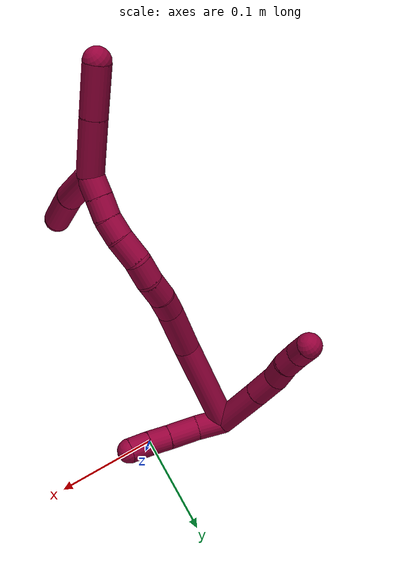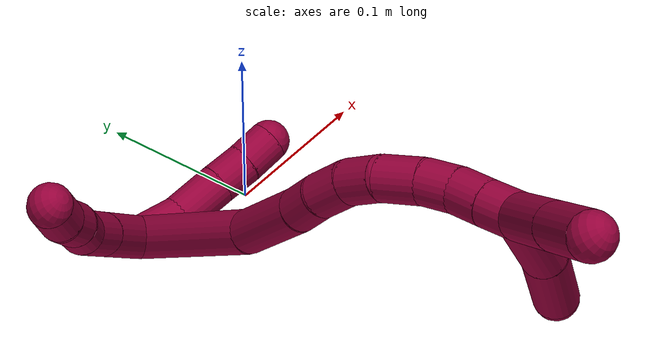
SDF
<sdf version="1.7">
 <world name="default">
  <model name="8">
   <static>0</static>
   <link name="8">
    <collision name="collision-cylinder-e_1_2_8">
     <pose>-0.022329 -0.010562 0.014191 0.639838 -0.900807 -0.317702</pose>
     <geometry><cylinder><radius>0.0125</radius><length>0.056974</length></cylinder></geometry>
     <surface>
      <friction><ode><mu>1.16</mu><mu2>1.16</mu2><slip1>0</slip1><slip2>0</slip2></ode></friction>
      <contact><ode><kp>1e+06</kp><kd>1</kd><max_vel>0</max_vel><min_depth>0.001</min_depth></ode></contact>
     </surface>
    </collision>
    <visual name="visual-cylinder-e_1_2_8">
     <pose>-0.022329 -0.010562 0.014191 0.639838 -0.900807 -0.317702</pose>
     <geometry><cylinder><radius>0.0125</radius><length>0.056974</length></cylinder></geometry>
     <material><ambient>0.584314 0 0.227451 1</ambient></material>
    </visual>
    <collision name="collision-cylinder-e_2_8_9">
     <pose>-0.055939 -0.026553 0.035819 0.630479 -0.886229 -0.307105</pose>
     <geometry><cylinder><radius>0.0125</radius><length>0.029124</length></cylinder></geometry>
     <surface>
      <friction><ode><mu>1.16</mu><mu2>1.16</mu2><slip1>0</slip1><slip2>0</slip2></ode></friction>
      <contact><ode><kp>1e+06</kp><kd>1</kd><max_vel>0</max_vel><min_depth>0.001</min_depth></ode></contact>
     </surface>
    </collision>
    <visual name="visual-cylinder-e_2_8_9">
     <pose>-0.055939 -0.026553 0.035819 0.630479 -0.886229 -0.307105</pose>
     <geometry><cylinder><radius>0.0125</radius><length>0.029124</length></cylinder></geometry>
     <material><ambient>0.584314 0 0.227451 1</ambient></material>
    </visual>
    <collision name="collision-cylinder-e_3_9_10">
     <pose>-0.074776 -0.034899 0.051381 0.344815 -0.719024 -0.13071</pose>
     <geometry><cylinder><radius>0.0125</radius><length>0.022943</length></cylinder></geometry>
     <surface>
      <friction><ode><mu>1.16</mu><mu2>1.16</mu2><slip1>0</slip1><slip2>0</slip2></ode></friction>
      <contact><ode><kp>1e+06</kp><kd>1</kd><max_vel>0</max_vel><min_depth>0.001</min_depth></ode></contact>
     </surface>
    </collision>
    <visual name="visual-cylinder-e_3_9_10">
     <pose>-0.074776 -0.034899 0.051381 0.344815 -0.719024 -0.13071</pose>
     <geometry><cylinder><radius>0.0125</radius><length>0.022943</length></cylinder></geometry>
     <material><ambient>0.584314 0 0.227451 1</ambient></material>
    </visual>
    <collision name="collision-cylinder-e_4_10_11">
     <pose>-0.090196 -0.040956 0.065482 0.483564 -0.861364 -0.225642</pose>
     <geometry><cylinder><radius>0.0125</radius><length>0.020731</length></cylinder></geometry>
     <surface>
      <friction><ode><mu>1.16</mu><mu2>1.16</mu2><slip1>0</slip1><slip2>0</slip2></ode></friction>
      <contact><ode><kp>1e+06</kp><kd>1</kd><max_vel>0</max_vel><min_depth>0.001</min_depth></ode></contact>
     </surface>
    </collision>
    <visual name="visual-cylinder-e_4_10_11">
     <pose>-0.090196 -0.040956 0.065482 0.483564 -0.861364 -0.225642</pose>
     <geometry><cylinder><radius>0.0125</radius><length>0.020731</length></cylinder></geometry>
     <material><ambient>0.584314 0 0.227451 1</ambient></material>
    </visual>
    <collision name="collision-cylinder-e_5_11_6">
     <pose>-0.105614 -0.044933 0.078134 0.124955 -0.843279 -0.056106</pose>
     <geometry><cylinder><radius>0.0125</radius><length>0.020227</length></cylinder></geometry>
     <surface>
      <friction><ode><mu>1.16</mu><mu2>1.16</mu2><slip1>0</slip1><slip2>0</slip2></ode></friction>
      <contact><ode><kp>1e+06</kp><kd>1</kd><max_vel>0</max_vel><min_depth>0.001</min_depth></ode></contact>
     </surface>
    </collision>
    <visual name="visual-cylinder-e_5_11_6">
     <pose>-0.105614 -0.044933 0.078134 0.124955 -0.843279 -0.056106</pose>
     <geometry><cylinder><radius>0.0125</radius><length>0.020227</length></cylinder></geometry>
     <material><ambient>0.584314 0 0.227451 1</ambient></material>
    </visual>
    <collision name="collision-cylinder-e_1_2_12">
     <pose>0.010636 0.007545 0.004197 -1.06314 0.888912 -0.546092</pose>
     <geometry><cylinder><radius>0.0125</radius><length>0.027399</length></cylinder></geometry>
     <surface>
      <friction><ode><mu>1.16</mu><mu2>1.16</mu2><slip1>0</slip1><slip2>0</slip2></ode></friction>
      <contact><ode><kp>1e+06</kp><kd>1</kd><max_vel>0</max_vel><min_depth>0.001</min_depth></ode></contact>
     </surface>
    </collision>
    <visual name="visual-cylinder-e_1_2_12">
     <pose>0.010636 0.007545 0.004197 -1.06314 0.888912 -0.546092</pose>
     <geometry><cylinder><radius>0.0125</radius><length>0.027399</length></cylinder></geometry>
     <material><ambient>0.584314 0 0.227451 1</ambient></material>
    </visual>
    <collision name="collision-cylinder-e_2_12_13">
     <pose>0.030636 0.025338 0.015298 -0.977993 0.64851 -0.353955</pose>
     <geometry><cylinder><radius>0.0125</radius><length>0.031007</length></cylinder></geometry>
     <surface>
      <friction><ode><mu>1.16</mu><mu2>1.16</mu2><slip1>0</slip1><slip2>0</slip2></ode></friction>
      <contact><ode><kp>1e+06</kp><kd>1</kd><max_vel>0</max_vel><min_depth>0.001</min_depth></ode></contact>
     </surface>
    </collision>
    <visual name="visual-cylinder-e_2_12_13">
     <pose>0.030636 0.025338 0.015298 -0.977993 0.64851 -0.353955</pose>
     <geometry><cylinder><radius>0.0125</radius><length>0.031007</length></cylinder></geometry>
     <material><ambient>0.584314 0 0.227451 1</ambient></material>
    </visual>
    <collision name="collision-cylinder-e_3_13_14">
     <pose>0.046444 0.042218 0.026888 -0.955561 0.670794 -0.357126</pose>
     <geometry><cylinder><radius>0.0125</radius><length>0.020734</length></cylinder></geometry>
     <surface>
      <friction><ode><mu>1.16</mu><mu2>1.16</mu2><slip1>0</slip1><slip2>0</slip2></ode></friction>
      <contact><ode><kp>1e+06</kp><kd>1</kd><max_vel>0</max_vel><min_depth>0.001</min_depth></ode></contact>
     </surface>
    </collision>
    <visual name="visual-cylinder-e_3_13_14">
     <pose>0.046444 0.042218 0.026888 -0.955561 0.670794 -0.357126</pose>
     <geometry><cylinder><radius>0.0125</radius><length>0.020734</length></cylinder></geometry>
     <material><ambient>0.584314 0 0.227451 1</ambient></material>
    </visual>
    <collision name="collision-cylinder-e_4_14_5">
     <pose>0.058835 0.056025 0.036258 -0.992536 0.606667 -0.33576</pose>
     <geometry><cylinder><radius>0.0125</radius><length>0.02086</length></cylinder></geometry>
     <surface>
      <friction><ode><mu>1.16</mu><mu2>1.16</mu2><slip1>0</slip1><slip2>0</slip2></ode></friction>
      <contact><ode><kp>1e+06</kp><kd>1</kd><max_vel>0</max_vel><min_depth>0.001</min_depth></ode></contact>
     </surface>
    </collision>
    <visual name="visual-cylinder-e_4_14_5">
     <pose>0.058835 0.056025 0.036258 -0.992536 0.606667 -0.33576</pose>
     <geometry><cylinder><radius>0.0125</radius><length>0.02086</length></cylinder></geometry>
     <material><ambient>0.584314 0 0.227451 1</ambient></material>
    </visual>
    <collision name="collision-cylinder-e_1_2_15">
     <pose>0.004846 -0.015669 0.045494 0.331697 0.100377 0.016815</pose>
     <geometry><cylinder><radius>0.0125</radius><length>0.09672</length></cylinder></geometry>
     <surface>
      <friction><ode><mu>1.16</mu><mu2>1.16</mu2><slip1>0</slip1><slip2>0</slip2></ode></friction>
      <contact><ode><kp>1e+06</kp><kd>1</kd><max_vel>0</max_vel><min_depth>0.001</min_depth></ode></contact>
     </surface>
    </collision>
    <visual name="visual-cylinder-e_1_2_15">
     <pose>0.004846 -0.015669 0.045494 0.331697 0.100377 0.016815</pose>
     <geometry><cylinder><radius>0.0125</radius><length>0.09672</length></cylinder></geometry>
     <material><ambient>0.584314 0 0.227451 1</ambient></material>
    </visual>
    <collision name="collision-cylinder-e_2_15_16">
     <pose>0.007745 -0.03572 0.116201 0.172082 -0.075951 -0.006554</pose>
     <geometry><cylinder><radius>0.0125</radius><length>0.051332</length></cylinder></geometry>
     <surface>
      <friction><ode><mu>1.16</mu><mu2>1.16</mu2><slip1>0</slip1><slip2>0</slip2></ode></friction>
      <contact><ode><kp>1e+06</kp><kd>1</kd><max_vel>0</max_vel><min_depth>0.001</min_depth></ode></contact>
     </surface>
    </collision>
    <visual name="visual-cylinder-e_2_15_16">
     <pose>0.007745 -0.03572 0.116201 0.172082 -0.075951 -0.006554</pose>
     <geometry><cylinder><radius>0.0125</radius><length>0.051332</length></cylinder></geometry>
     <material><ambient>0.584314 0 0.227451 1</ambient></material>
    </visual>
    <collision name="collision-cylinder-e_3_16_17">
     <pose>0.004737 -0.040768 0.15203 0.062606 -0.099318 -0.003113</pose>
     <geometry><cylinder><radius>0.0125</radius><length>0.021375</length></cylinder></geometry>
     <surface>
      <friction><ode><mu>1.16</mu><mu2>1.16</mu2><slip1>0</slip1><slip2>0</slip2></ode></friction>
      <contact><ode><kp>1e+06</kp><kd>1</kd><max_vel>0</max_vel><min_depth>0.001</min_depth></ode></contact>
     </surface>
    </collision>
    <visual name="visual-cylinder-e_3_16_17">
     <pose>0.004737 -0.040768 0.15203 0.062606 -0.099318 -0.003113</pose>
     <geometry><cylinder><radius>0.0125</radius><length>0.021375</length></cylinder></geometry>
     <material><ambient>0.584314 0 0.227451 1</ambient></material>
    </visual>
    <collision name="collision-cylinder-e_4_17_18">
     <pose>0.004336 -0.042184 0.174105 0.065442 0.057295 0.001876</pose>
     <geometry><cylinder><radius>0.0125</radius><length>0.023009</length></cylinder></geometry>
     <surface>
      <friction><ode><mu>1.16</mu><mu2>1.16</mu2><slip1>0</slip1><slip2>0</slip2></ode></friction>
      <contact><ode><kp>1e+06</kp><kd>1</kd><max_vel>0</max_vel><min_depth>0.001</min_depth></ode></contact>
     </surface>
    </collision>
    <visual name="visual-cylinder-e_4_17_18">
     <pose>0.004336 -0.042184 0.174105 0.065442 0.057295 0.001876</pose>
     <geometry><cylinder><radius>0.0125</radius><length>0.023009</length></cylinder></geometry>
     <material><ambient>0.584314 0 0.227451 1</ambient></material>
    </visual>
    <collision name="collision-cylinder-e_5_18_19">
     <pose>0.00668 -0.046077 0.19636 0.283211 0.148777 0.021248</pose>
     <geometry><cylinder><radius>0.0125</radius><length>0.022735</length></cylinder></geometry>
     <surface>
      <friction><ode><mu>1.16</mu><mu2>1.16</mu2><slip1>0</slip1><slip2>0</slip2></ode></friction>
      <contact><ode><kp>1e+06</kp><kd>1</kd><max_vel>0</max_vel><min_depth>0.001</min_depth></ode></contact>
     </surface>
    </collision>
    <visual name="visual-cylinder-e_5_18_19">
     <pose>0.00668 -0.046077 0.19636 0.283211 0.148777 0.021248</pose>
     <geometry><cylinder><radius>0.0125</radius><length>0.022735</length></cylinder></geometry>
     <material><ambient>0.584314 0 0.227451 1</ambient></material>
    </visual>
    <collision name="collision-cylinder-e_6_19_20">
     <pose>0.013483 -0.053344 0.217679 0.373635 0.425108 0.081542</pose>
     <geometry><cylinder><radius>0.0125</radius><length>0.024817</length></cylinder></geometry>
     <surface>
      <friction><ode><mu>1.16</mu><mu2>1.16</mu2><slip1>0</slip1><slip2>0</slip2></ode></friction>
      <contact><ode><kp>1e+06</kp><kd>1</kd><max_vel>0</max_vel><min_depth>0.001</min_depth></ode></contact>
     </surface>
    </collision>
    <visual name="visual-cylinder-e_6_19_20">
     <pose>0.013483 -0.053344 0.217679 0.373635 0.425108 0.081542</pose>
     <geometry><cylinder><radius>0.0125</radius><length>0.024817</length></cylinder></geometry>
     <material><ambient>0.584314 0 0.227451 1</ambient></material>
    </visual>
    <collision name="collision-cylinder-e_7_20_21">
     <pose>0.022718 -0.062185 0.236006 0.543504 0.424187 0.119859</pose>
     <geometry><cylinder><radius>0.0125</radius><length>0.020007</length></cylinder></geometry>
     <surface>
      <friction><ode><mu>1.16</mu><mu2>1.16</mu2><slip1>0</slip1><slip2>0</slip2></ode></friction>
      <contact><ode><kp>1e+06</kp><kd>1</kd><max_vel>0</max_vel><min_depth>0.001</min_depth></ode></contact>
     </surface>
    </collision>
    <visual name="visual-cylinder-e_7_20_21">
     <pose>0.022718 -0.062185 0.236006 0.543504 0.424187 0.119859</pose>
     <geometry><cylinder><radius>0.0125</radius><length>0.020007</length></cylinder></geometry>
     <material><ambient>0.584314 0 0.227451 1</ambient></material>
    </visual>
    <collision name="collision-cylinder-e_8_21_22">
     <pose>0.029621 -0.073002 0.251227 0.68841 0.282275 0.101778</pose>
     <geometry><cylinder><radius>0.0125</radius><length>0.020003</length></cylinder></geometry>
     <surface>
      <friction><ode><mu>1.16</mu><mu2>1.16</mu2><slip1>0</slip1><slip2>0</slip2></ode></friction>
      <contact><ode><kp>1e+06</kp><kd>1</kd><max_vel>0</max_vel><min_depth>0.001</min_depth></ode></contact>
     </surface>
    </collision>
    <visual name="visual-cylinder-e_8_21_22">
     <pose>0.029621 -0.073002 0.251227 0.68841 0.282275 0.101778</pose>
     <geometry><cylinder><radius>0.0125</radius><length>0.020003</length></cylinder></geometry>
     <material><ambient>0.584314 0 0.227451 1</ambient></material>
    </visual>
    <collision name="collision-cylinder-e_9_22_1">
     <pose>0.035428 -0.085048 0.266099 0.67312 0.306949 0.108138</pose>
     <geometry><cylinder><radius>0.0125</radius><length>0.020002</length></cylinder></geometry>
     <surface>
      <friction><ode><mu>1.16</mu><mu2>1.16</mu2><slip1>0</slip1><slip2>0</slip2></ode></friction>
      <contact><ode><kp>1e+06</kp><kd>1</kd><max_vel>0</max_vel><min_depth>0.001</min_depth></ode></contact>
     </surface>
    </collision>
    <visual name="visual-cylinder-e_9_22_1">
     <pose>0.035428 -0.085048 0.266099 0.67312 0.306949 0.108138</pose>
     <geometry><cylinder><radius>0.0125</radius><length>0.020002</length></cylinder></geometry>
     <material><ambient>0.584314 0 0.227451 1</ambient></material>
    </visual>
    <collision name="collision-cylinder-e_1_1_23">
     <pose>0.029572 -0.104722 0.29467 0.576531 -0.338872 -0.10137</pose>
     <geometry><cylinder><radius>0.0125</radius><length>0.053414</length></cylinder></geometry>
     <surface>
      <friction><ode><mu>1.16</mu><mu2>1.16</mu2><slip1>0</slip1><slip2>0</slip2></ode></friction>
      <contact><ode><kp>1e+06</kp><kd>1</kd><max_vel>0</max_vel><min_depth>0.001</min_depth></ode></contact>
     </surface>
    </collision>
    <visual name="visual-cylinder-e_1_1_23">
     <pose>0.029572 -0.104722 0.29467 0.576531 -0.338872 -0.10137</pose>
     <geometry><cylinder><radius>0.0125</radius><length>0.053414</length></cylinder></geometry>
     <material><ambient>0.584314 0 0.227451 1</ambient></material>
    </visual>
    <collision name="collision-cylinder-e_2_23_4">
     <pose>0.012824 -0.130445 0.334139 0.578784 -0.344642 -0.103553</pose>
     <geometry><cylinder><radius>0.0125</radius><length>0.046586</length></cylinder></geometry>
     <surface>
      <friction><ode><mu>1.16</mu><mu2>1.16</mu2><slip1>0</slip1><slip2>0</slip2></ode></friction>
      <contact><ode><kp>1e+06</kp><kd>1</kd><max_vel>0</max_vel><min_depth>0.001</min_depth></ode></contact>
     </surface>
    </collision>
    <visual name="visual-cylinder-e_2_23_4">
     <pose>0.012824 -0.130445 0.334139 0.578784 -0.344642 -0.103553</pose>
     <geometry><cylinder><radius>0.0125</radius><length>0.046586</length></cylinder></geometry>
     <material><ambient>0.584314 0 0.227451 1</ambient></material>
    </visual>
    <collision name="collision-cylinder-e_1_1_24">
     <pose>0.058961 -0.091166 0.260031 3.12868 0.987907 3.11761</pose>
     <geometry><cylinder><radius>0.0125</radius><length>0.049135</length></cylinder></geometry>
     <surface>
      <friction><ode><mu>1.16</mu><mu2>1.16</mu2><slip1>0</slip1><slip2>0</slip2></ode></friction>
      <contact><ode><kp>1e+06</kp><kd>1</kd><max_vel>0</max_vel><min_depth>0.001</min_depth></ode></contact>
     </surface>
    </collision>
    <visual name="visual-cylinder-e_1_1_24">
     <pose>0.058961 -0.091166 0.260031 3.12868 0.987907 3.11761</pose>
     <geometry><cylinder><radius>0.0125</radius><length>0.049135</length></cylinder></geometry>
     <material><ambient>0.584314 0 0.227451 1</ambient></material>
    </visual>
    <collision name="collision-cylinder-e_2_24_3">
     <pose>0.098733 -0.091747 0.229907 3.11714 0.859258 3.08824</pose>
     <geometry><cylinder><radius>0.0125</radius><length>0.050865</length></cylinder></geometry>
     <surface>
      <friction><ode><mu>1.16</mu><mu2>1.16</mu2><slip1>0</slip1><slip2>0</slip2></ode></friction>
      <contact><ode><kp>1e+06</kp><kd>1</kd><max_vel>0</max_vel><min_depth>0.001</min_depth></ode></contact>
     </surface>
    </collision>
    <visual name="visual-cylinder-e_2_24_3">
     <pose>0.098733 -0.091747 0.229907 3.11714 0.859258 3.08824</pose>
     <geometry><cylinder><radius>0.0125</radius><length>0.050865</length></cylinder></geometry>
     <material><ambient>0.584314 0 0.227451 1</ambient></material>
    </visual>
    <collision name="collision-sphere-3">
     <pose>0.117995 -0.092153 0.213305 0 -0 0</pose>
     <geometry><sphere><radius>0.0125</radius></sphere></geometry>
     <surface>
      <friction><ode><mu>1.16</mu><mu2>1.16</mu2><slip1>0</slip1><slip2>0</slip2></ode></friction>
      <contact><ode><kp>1e+06</kp><kd>1</kd><max_vel>0</max_vel><min_depth>0.001</min_depth></ode></contact>
     </surface>
    </collision>
    <visual name="visual-sphere-3">
     <pose>0.117995 -0.092153 0.213305 0 -0 0</pose>
     <geometry><sphere><radius>0.0125</radius></sphere></geometry>
     <material><ambient>0.584314 0 0.227451 1</ambient></material>
    </visual>
    <collision name="collision-sphere-24">
     <pose>0.079471 -0.091341 0.24651 0 -0 0</pose>
     <geometry><sphere><radius>0.0125</radius></sphere></geometry>
     <surface>
      <friction><ode><mu>1.16</mu><mu2>1.16</mu2><slip1>0</slip1><slip2>0</slip2></ode></friction>
      <contact><ode><kp>1e+06</kp><kd>1</kd><max_vel>0</max_vel><min_depth>0.001</min_depth></ode></contact>
     </surface>
    </collision>
    <visual name="visual-sphere-24">
     <pose>0.079471 -0.091341 0.24651 0 -0 0</pose>
     <geometry><sphere><radius>0.0125</radius></sphere></geometry>
     <material><ambient>0.584314 0 0.227451 1</ambient></material>
    </visual>
    <collision name="collision-sphere-4">
     <pose>0.004954 -0.142437 0.352492 0 -0 0</pose>
     <geometry><sphere><radius>0.0125</radius></sphere></geometry>
     <surface>
      <friction><ode><mu>1.16</mu><mu2>1.16</mu2><slip1>0</slip1><slip2>0</slip2></ode></friction>
      <contact><ode><kp>1e+06</kp><kd>1</kd><max_vel>0</max_vel><min_depth>0.001</min_depth></ode></contact>
     </surface>
    </collision>
    <visual name="visual-sphere-4">
     <pose>0.004954 -0.142437 0.352492 0 -0 0</pose>
     <geometry><sphere><radius>0.0125</radius></sphere></geometry>
     <material><ambient>0.584314 0 0.227451 1</ambient></material>
    </visual>
    <collision name="collision-sphere-23">
     <pose>0.020694 -0.118453 0.315786 0 -0 0</pose>
     <geometry><sphere><radius>0.0125</radius></sphere></geometry>
     <surface>
      <friction><ode><mu>1.16</mu><mu2>1.16</mu2><slip1>0</slip1><slip2>0</slip2></ode></friction>
      <contact><ode><kp>1e+06</kp><kd>1</kd><max_vel>0</max_vel><min_depth>0.001</min_depth></ode></contact>
     </surface>
    </collision>
    <visual name="visual-sphere-23">
     <pose>0.020694 -0.118453 0.315786 0 -0 0</pose>
     <geometry><sphere><radius>0.0125</radius></sphere></geometry>
     <material><ambient>0.584314 0 0.227451 1</ambient></material>
    </visual>
    <collision name="collision-sphere-1">
     <pose>0.03845 -0.090992 0.273553 0 -0 0</pose>
     <geometry><sphere><radius>0.0125</radius></sphere></geometry>
     <surface>
      <friction><ode><mu>1.16</mu><mu2>1.16</mu2><slip1>0</slip1><slip2>0</slip2></ode></friction>
      <contact><ode><kp>1e+06</kp><kd>1</kd><max_vel>0</max_vel><min_depth>0.001</min_depth></ode></contact>
     </surface>
    </collision>
    <visual name="visual-sphere-1">
     <pose>0.03845 -0.090992 0.273553 0 -0 0</pose>
     <geometry><sphere><radius>0.0125</radius></sphere></geometry>
     <material><ambient>0.584314 0 0.227451 1</ambient></material>
    </visual>
    <collision name="collision-sphere-22">
     <pose>0.032406 -0.079105 0.258645 0 -0 0</pose>
     <geometry><sphere><radius>0.0125</radius></sphere></geometry>
     <surface>
      <friction><ode><mu>1.16</mu><mu2>1.16</mu2><slip1>0</slip1><slip2>0</slip2></ode></friction>
      <contact><ode><kp>1e+06</kp><kd>1</kd><max_vel>0</max_vel><min_depth>0.001</min_depth></ode></contact>
     </surface>
    </collision>
    <visual name="visual-sphere-22">
     <pose>0.032406 -0.079105 0.258645 0 -0 0</pose>
     <geometry><sphere><radius>0.0125</radius></sphere></geometry>
     <material><ambient>0.584314 0 0.227451 1</ambient></material>
    </visual>
    <collision name="collision-sphere-21">
     <pose>0.026835 -0.0669 0.243809 0 -0 0</pose>
     <geometry><sphere><radius>0.0125</radius></sphere></geometry>
     <surface>
      <friction><ode><mu>1.16</mu><mu2>1.16</mu2><slip1>0</slip1><slip2>0</slip2></ode></friction>
      <contact><ode><kp>1e+06</kp><kd>1</kd><max_vel>0</max_vel><min_depth>0.001</min_depth></ode></contact>
     </surface>
    </collision>
    <visual name="visual-sphere-21">
     <pose>0.026835 -0.0669 0.243809 0 -0 0</pose>
     <geometry><sphere><radius>0.0125</radius></sphere></geometry>
     <material><ambient>0.584314 0 0.227451 1</ambient></material>
    </visual>
    <collision name="collision-sphere-6">
     <pose>-0.113167 -0.045772 0.084807 0 -0 0</pose>
     <geometry><sphere><radius>0.0125</radius></sphere></geometry>
     <surface>
      <friction><ode><mu>1.16</mu><mu2>1.16</mu2><slip1>0</slip1><slip2>0</slip2></ode></friction>
      <contact><ode><kp>1e+06</kp><kd>1</kd><max_vel>0</max_vel><min_depth>0.001</min_depth></ode></contact>
     </surface>
    </collision>
    <visual name="visual-sphere-6">
     <pose>-0.113167 -0.045772 0.084807 0 -0 0</pose>
     <geometry><sphere><radius>0.0125</radius></sphere></geometry>
     <material><ambient>0.584314 0 0.227451 1</ambient></material>
    </visual>
    <collision name="collision-sphere-11">
     <pose>-0.098061 -0.044095 0.07146 0 -0 0</pose>
     <geometry><sphere><radius>0.0125</radius></sphere></geometry>
     <surface>
      <friction><ode><mu>1.16</mu><mu2>1.16</mu2><slip1>0</slip1><slip2>0</slip2></ode></friction>
      <contact><ode><kp>1e+06</kp><kd>1</kd><max_vel>0</max_vel><min_depth>0.001</min_depth></ode></contact>
     </surface>
    </collision>
    <visual name="visual-sphere-11">
     <pose>-0.098061 -0.044095 0.07146 0 -0 0</pose>
     <geometry><sphere><radius>0.0125</radius></sphere></geometry>
     <material><ambient>0.584314 0 0.227451 1</ambient></material>
    </visual>
    <collision name="collision-sphere-10">
     <pose>-0.082332 -0.037817 0.059505 0 -0 0</pose>
     <geometry><sphere><radius>0.0125</radius></sphere></geometry>
     <surface>
      <friction><ode><mu>1.16</mu><mu2>1.16</mu2><slip1>0</slip1><slip2>0</slip2></ode></friction>
      <contact><ode><kp>1e+06</kp><kd>1</kd><max_vel>0</max_vel><min_depth>0.001</min_depth></ode></contact>
     </surface>
    </collision>
    <visual name="visual-sphere-10">
     <pose>-0.082332 -0.037817 0.059505 0 -0 0</pose>
     <geometry><sphere><radius>0.0125</radius></sphere></geometry>
     <material><ambient>0.584314 0 0.227451 1</ambient></material>
    </visual>
    <collision name="collision-sphere-9">
     <pose>-0.06722 -0.031981 0.043257 0 -0 0</pose>
     <geometry><sphere><radius>0.0125</radius></sphere></geometry>
     <surface>
      <friction><ode><mu>1.16</mu><mu2>1.16</mu2><slip1>0</slip1><slip2>0</slip2></ode></friction>
      <contact><ode><kp>1e+06</kp><kd>1</kd><max_vel>0</max_vel><min_depth>0.001</min_depth></ode></contact>
     </surface>
    </collision>
    <visual name="visual-sphere-9">
     <pose>-0.06722 -0.031981 0.043257 0 -0 0</pose>
     <geometry><sphere><radius>0.0125</radius></sphere></geometry>
     <material><ambient>0.584314 0 0.227451 1</ambient></material>
    </visual>
    <collision name="collision-sphere-2">
     <geometry><sphere><radius>0.0125</radius></sphere></geometry>
     <surface>
      <friction><ode><mu>1.16</mu><mu2>1.16</mu2><slip1>0</slip1><slip2>0</slip2></ode></friction>
      <contact><ode><kp>1e+06</kp><kd>1</kd><max_vel>0</max_vel><min_depth>0.001</min_depth></ode></contact>
     </surface>
    </collision>
    <visual name="visual-sphere-2">
     <geometry><sphere><radius>0.0125</radius></sphere></geometry>
     <material><ambient>0.584314 0 0.227451 1</ambient></material>
    </visual>
    <collision name="collision-sphere-19">
     <pose>0.008365 -0.049218 0.207154 0 -0 0</pose>
     <geometry><sphere><radius>0.0125</radius></sphere></geometry>
     <surface>
      <friction><ode><mu>1.16</mu><mu2>1.16</mu2><slip1>0</slip1><slip2>0</slip2></ode></friction>
      <contact><ode><kp>1e+06</kp><kd>1</kd><max_vel>0</max_vel><min_depth>0.001</min_depth></ode></contact>
     </surface>
    </collision>
    <visual name="visual-sphere-19">
     <pose>0.008365 -0.049218 0.207154 0 -0 0</pose>
     <geometry><sphere><radius>0.0125</radius></sphere></geometry>
     <material><ambient>0.584314 0 0.227451 1</ambient></material>
    </visual>
    <collision name="collision-sphere-8">
     <pose>-0.044658 -0.021124 0.028381 0 -0 0</pose>
     <geometry><sphere><radius>0.0125</radius></sphere></geometry>
     <surface>
      <friction><ode><mu>1.16</mu><mu2>1.16</mu2><slip1>0</slip1><slip2>0</slip2></ode></friction>
      <contact><ode><kp>1e+06</kp><kd>1</kd><max_vel>0</max_vel><min_depth>0.001</min_depth></ode></contact>
     </surface>
    </collision>
    <visual name="visual-sphere-8">
     <pose>-0.044658 -0.021124 0.028381 0 -0 0</pose>
     <geometry><sphere><radius>0.0125</radius></sphere></geometry>
     <material><ambient>0.584314 0 0.227451 1</ambient></material>
    </visual>
    <collision name="collision-sphere-12">
     <pose>0.021272 0.015091 0.008395 0 -0 0</pose>
     <geometry><sphere><radius>0.0125</radius></sphere></geometry>
     <surface>
      <friction><ode><mu>1.16</mu><mu2>1.16</mu2><slip1>0</slip1><slip2>0</slip2></ode></friction>
      <contact><ode><kp>1e+06</kp><kd>1</kd><max_vel>0</max_vel><min_depth>0.001</min_depth></ode></contact>
     </surface>
    </collision>
    <visual name="visual-sphere-12">
     <pose>0.021272 0.015091 0.008395 0 -0 0</pose>
     <geometry><sphere><radius>0.0125</radius></sphere></geometry>
     <material><ambient>0.584314 0 0.227451 1</ambient></material>
    </visual>
    <collision name="collision-sphere-13">
     <pose>0.04 0.035586 0.022201 0 -0 0</pose>
     <geometry><sphere><radius>0.0125</radius></sphere></geometry>
     <surface>
      <friction><ode><mu>1.16</mu><mu2>1.16</mu2><slip1>0</slip1><slip2>0</slip2></ode></friction>
      <contact><ode><kp>1e+06</kp><kd>1</kd><max_vel>0</max_vel><min_depth>0.001</min_depth></ode></contact>
     </surface>
    </collision>
    <visual name="visual-sphere-13">
     <pose>0.04 0.035586 0.022201 0 -0 0</pose>
     <geometry><sphere><radius>0.0125</radius></sphere></geometry>
     <material><ambient>0.584314 0 0.227451 1</ambient></material>
    </visual>
    <collision name="collision-sphere-14">
     <pose>0.052889 0.04885 0.031575 0 -0 0</pose>
     <geometry><sphere><radius>0.0125</radius></sphere></geometry>
     <surface>
      <friction><ode><mu>1.16</mu><mu2>1.16</mu2><slip1>0</slip1><slip2>0</slip2></ode></friction>
      <contact><ode><kp>1e+06</kp><kd>1</kd><max_vel>0</max_vel><min_depth>0.001</min_depth></ode></contact>
     </surface>
    </collision>
    <visual name="visual-sphere-14">
     <pose>0.052889 0.04885 0.031575 0 -0 0</pose>
     <geometry><sphere><radius>0.0125</radius></sphere></geometry>
     <material><ambient>0.584314 0 0.227451 1</ambient></material>
    </visual>
    <collision name="collision-sphere-5">
     <pose>0.064782 0.063201 0.040942 0 -0 0</pose>
     <geometry><sphere><radius>0.0125</radius></sphere></geometry>
     <surface>
      <friction><ode><mu>1.16</mu><mu2>1.16</mu2><slip1>0</slip1><slip2>0</slip2></ode></friction>
      <contact><ode><kp>1e+06</kp><kd>1</kd><max_vel>0</max_vel><min_depth>0.001</min_depth></ode></contact>
     </surface>
    </collision>
    <visual name="visual-sphere-5">
     <pose>0.064782 0.063201 0.040942 0 -0 0</pose>
     <geometry><sphere><radius>0.0125</radius></sphere></geometry>
     <material><ambient>0.584314 0 0.227451 1</ambient></material>
    </visual>
    <collision name="collision-sphere-15">
     <pose>0.009692 -0.031338 0.090987 0 -0 0</pose>
     <geometry><sphere><radius>0.0125</radius></sphere></geometry>
     <surface>
      <friction><ode><mu>1.16</mu><mu2>1.16</mu2><slip1>0</slip1><slip2>0</slip2></ode></friction>
      <contact><ode><kp>1e+06</kp><kd>1</kd><max_vel>0</max_vel><min_depth>0.001</min_depth></ode></contact>
     </surface>
    </collision>
    <visual name="visual-sphere-15">
     <pose>0.009692 -0.031338 0.090987 0 -0 0</pose>
     <geometry><sphere><radius>0.0125</radius></sphere></geometry>
     <material><ambient>0.584314 0 0.227451 1</ambient></material>
    </visual>
    <collision name="collision-sphere-16">
     <pose>0.005797 -0.040103 0.141415 0 -0 0</pose>
     <geometry><sphere><radius>0.0125</radius></sphere></geometry>
     <surface>
      <friction><ode><mu>1.16</mu><mu2>1.16</mu2><slip1>0</slip1><slip2>0</slip2></ode></friction>
      <contact><ode><kp>1e+06</kp><kd>1</kd><max_vel>0</max_vel><min_depth>0.001</min_depth></ode></contact>
     </surface>
    </collision>
    <visual name="visual-sphere-16">
     <pose>0.005797 -0.040103 0.141415 0 -0 0</pose>
     <geometry><sphere><radius>0.0125</radius></sphere></geometry>
     <material><ambient>0.584314 0 0.227451 1</ambient></material>
    </visual>
    <collision name="collision-sphere-17">
     <pose>0.003678 -0.041433 0.162644 0 -0 0</pose>
     <geometry><sphere><radius>0.0125</radius></sphere></geometry>
     <surface>
      <friction><ode><mu>1.16</mu><mu2>1.16</mu2><slip1>0</slip1><slip2>0</slip2></ode></friction>
      <contact><ode><kp>1e+06</kp><kd>1</kd><max_vel>0</max_vel><min_depth>0.001</min_depth></ode></contact>
     </surface>
    </collision>
    <visual name="visual-sphere-17">
     <pose>0.003678 -0.041433 0.162644 0 -0 0</pose>
     <geometry><sphere><radius>0.0125</radius></sphere></geometry>
     <material><ambient>0.584314 0 0.227451 1</ambient></material>
    </visual>
    <collision name="collision-sphere-18">
     <pose>0.004995 -0.042935 0.185566 0 -0 0</pose>
     <geometry><sphere><radius>0.0125</radius></sphere></geometry>
     <surface>
      <friction><ode><mu>1.16</mu><mu2>1.16</mu2><slip1>0</slip1><slip2>0</slip2></ode></friction>
      <contact><ode><kp>1e+06</kp><kd>1</kd><max_vel>0</max_vel><min_depth>0.001</min_depth></ode></contact>
     </surface>
    </collision>
    <visual name="visual-sphere-18">
     <pose>0.004995 -0.042935 0.185566 0 -0 0</pose>
     <geometry><sphere><radius>0.0125</radius></sphere></geometry>
     <material><ambient>0.584314 0 0.227451 1</ambient></material>
    </visual>
    <collision name="collision-sphere-20">
     <pose>0.0186 -0.05747 0.228203 0 -0 0</pose>
     <geometry><sphere><radius>0.0125</radius></sphere></geometry>
     <surface>
      <friction><ode><mu>1.16</mu><mu2>1.16</mu2><slip1>0</slip1><slip2>0</slip2></ode></friction>
      <contact><ode><kp>1e+06</kp><kd>1</kd><max_vel>0</max_vel><min_depth>0.001</min_depth></ode></contact>
     </surface>
    </collision>
    <visual name="visual-sphere-20">
     <pose>0.0186 -0.05747 0.228203 0 -0 0</pose>
     <geometry><sphere><radius>0.0125</radius></sphere></geometry>
     <material><ambient>0.584314 0 0.227451 1</ambient></material>
    </visual>
    <inertial>
     <pose>0.010952 -0.044909 0.141606 0 -0 0</pose>
     <mass>0.75</mass>
     <inertia><ixx>0.00013</ixx><ixy>0</ixy><ixz>0</ixz><iyy>0.000159</iyy><iyz>0</iyz><izz>7.3e-05</izz></inertia>
    </inertial>
   </link>
   <pose>-0.075929 0.017368 0.011435 0.483258 0.576982 -0.602983</pose>
  </model>
 </world>
</sdf>
